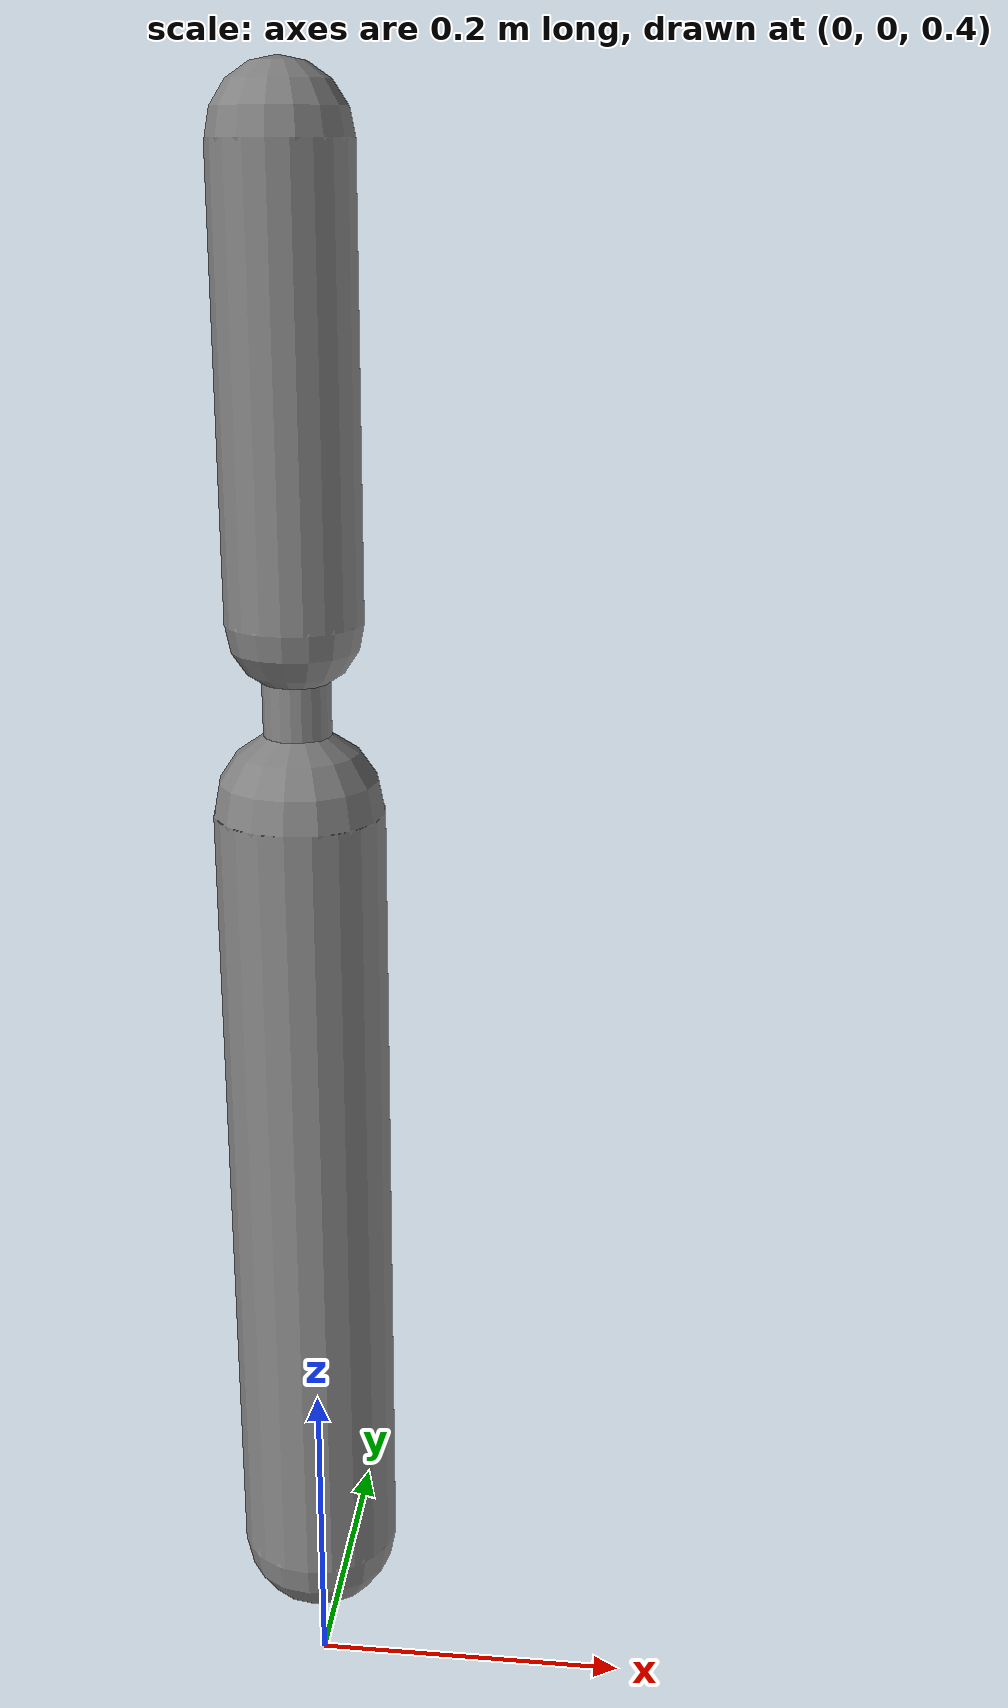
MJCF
<?xml version='1.0' encoding='UTF-8'?>
<mujoco model="RobotModel">
  <option gravity="0 0 -9.81" timestep="0.002" solver="CG" iterations="500" integrator="Euler"/>
  <worldbody>
    <geom name="Floor" type="plane" size="10 10 0.1" pos="0 0 0" rgba="0.8 0.8 0.8 1"/>
    <body name="Limb0" pos="0 0 0.5">
      <geom type="capsule" fromto="0 0 0 0 0 0.5" size="0.05" density="1000" contype="0" conaffinity="0"/>
      <body name="Limb0_32580d6d" pos="0 0 0.5">
        <geom type="capsule" fromto="0 0 0 0 0 0.10999667474598565" size="0.019745094877504994" density="800" contype="0" conaffinity="0"/>
        <body name="Limb1_32580d6d" pos="0 0 0.10999667474598565">
          <geom type="capsule" fromto="0 0 0 0 0 0.1492734096926473" size="0.012065711895331697" density="800" contype="0" conaffinity="0"/>
          <joint name="Joint_Limb0_32580d6d_Limb1_32580d6d_0" type="hinge" axis="1 0 0" range="-60 60"/>
        </body>
        <body name="Limb2_32580d6d" pos="0 0 0.10999667474598565">
          <geom type="capsule" fromto="0 0 0 0 0 0.2511485557510637" size="0.03942350803198402" density="800" contype="0" conaffinity="0"/>
          <joint name="Joint_Limb0_32580d6d_Limb2_32580d6d_0" type="hinge" axis="1 0 0" range="-60 60"/>
        </body>
        <joint name="Joint_Limb0_Limb0_32580d6d_0" type="hinge" axis="1 0 0" range="-60 60"/>
      </body>
    </body>
  </worldbody>
  <actuator>
    <position name="position_Actuator_Joint_Limb0_Limb0_32580d6d_0" joint="Joint_Limb0_Limb0_32580d6d_0" gear="1.0"/>
    <position name="position_Actuator_Joint_Limb0_32580d6d_Limb1_32580d6d_0" joint="Joint_Limb0_32580d6d_Limb1_32580d6d_0" gear="1.0"/>
    <position name="position_Actuator_Joint_Limb0_32580d6d_Limb2_32580d6d_0" joint="Joint_Limb0_32580d6d_Limb2_32580d6d_0" gear="1.0"/>
  </actuator>
</mujoco>
